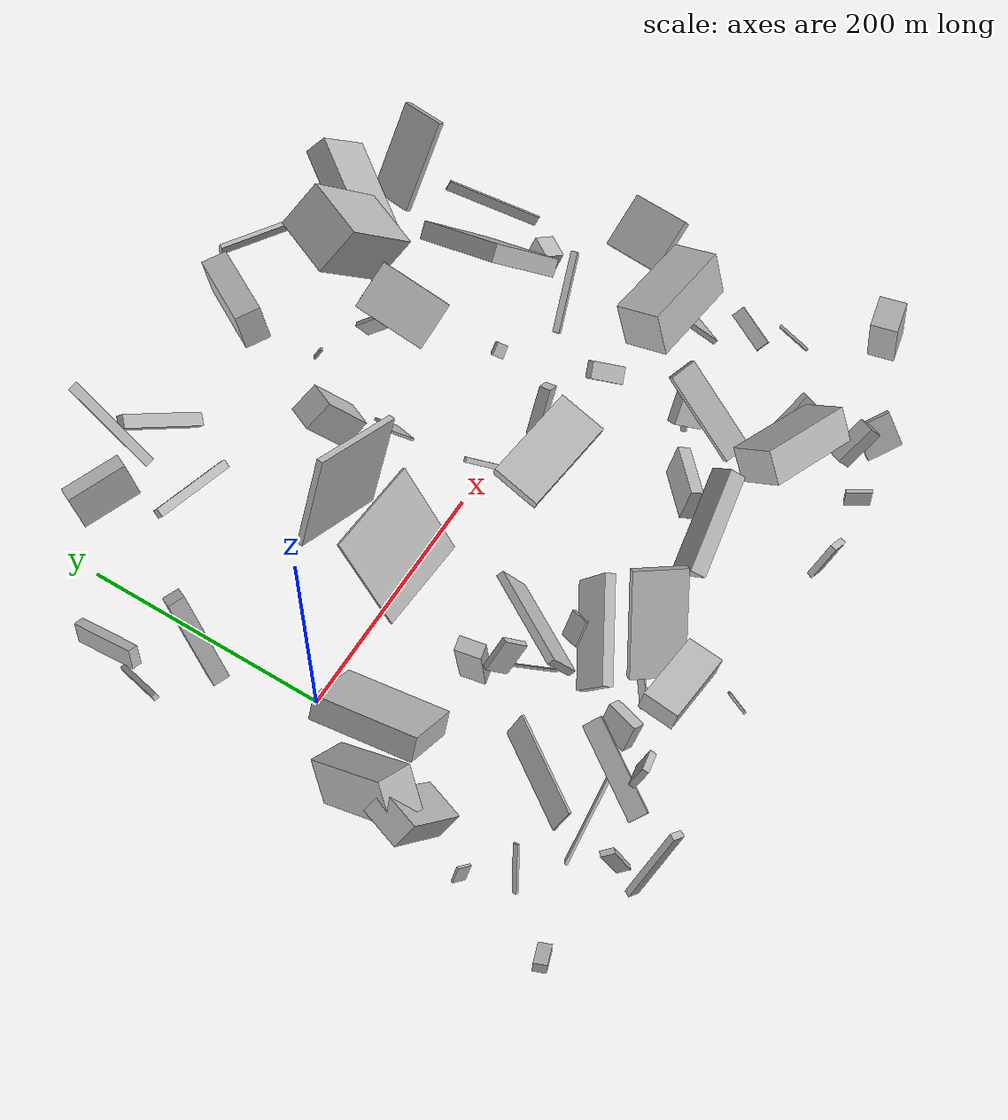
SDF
<sdf version="1.6">
 <world name="default">
  <scene>
   <sky><clouds><speed>12</speed></clouds></sky>
   <ambient>0.4 0.4 0.4 1</ambient>
   <background>0.7 0.7 0.7 1</background>
   <shadows>1</shadows>
  </scene>
  <gravity>0 0 -9.8066</gravity>
  <magnetic_field>6e-06 2.3e-05 -4.2e-05</magnetic_field>
  <physics default="0" name="default_physics" type="ode">
   <ode>
    <solver>
     <type>quick</type>
     <iters>10</iters>
     <sor>1.0</sor>
     <use_dynamic_moi_rescaling>0</use_dynamic_moi_rescaling>
    </solver>
    <constraints>
     <cfm>0</cfm>
     <erp>0.2</erp>
     <contact_max_correcting_vel>100</contact_max_correcting_vel>
     <contact_surface_layer>0.001</contact_surface_layer>
    </constraints>
   </ode>
   <max_step_size>0.004</max_step_size>
   <real_time_factor>1</real_time_factor>
   <real_time_update_rate>250</real_time_update_rate>
  </physics>
  <light name="sun" type="directional">
   <pose>0 0 10 0 0 0</pose>
   <diffuse>0.8 0.8 0.8 1</diffuse>
   <specular>0.2 0.2 0.2 1</specular>
   <attenuation>
    <range>1000</range>
    <constant>0.9</constant>
    <linear>0.01</linear>
    <quadratic>0.001</quadratic>
   </attenuation>
   <direction>-0.5 0.1 -0.9</direction>
  </light>
  <model name="building_1">
   <static>0</static>
   <pose>98.65952027042276 -174.1533421441343 38.85912450150474 1.1727703756111267 -0.3190201569502076 2.220692946929394</pose>
   <link name="link">
    <gravity>0</gravity>
    <pose>0 0 40.0 0 0 0</pose>
    <collision name="collision"><geometry><box><size>8 50 80</size></box></geometry></collision>
    <visual name="visual">
     <cast_shadows>0</cast_shadows>
     <geometry><box><size>8 50 80</size></box></geometry>
     <material>
      <script>
       <uri>model://HANNAS_wall/materials/scripts</uri>
       <uri>model://HANNAS_wall/materials/textures</uri>
       <name>vrc/HANNAS_wall</name>
      </script>
     </material>
    </visual>
   </link>
  </model>
  <model name="building_2">
   <static>0</static>
   <pose>325.8847567905955 -220.87213753472463 96.13601559932803 -2.2668115291003508 0.23320895431099123 -0.30538913012457736</pose>
   <link name="link">
    <gravity>0</gravity>
    <pose>0 0 18.5 0 0 0</pose>
    <collision name="collision"><geometry><box><size>80 27 37</size></box></geometry></collision>
    <visual name="visual">
     <cast_shadows>0</cast_shadows>
     <geometry><box><size>80 27 37</size></box></geometry>
     <material>
      <script>
       <uri>model://HANNAS_wall/materials/scripts</uri>
       <uri>model://HANNAS_wall/materials/textures</uri>
       <name>vrc/HANNAS_wall</name>
      </script>
     </material>
    </visual>
   </link>
  </model>
  <model name="building_3">
   <static>0</static>
   <pose>350.14220150622276 -130.73972283943507 38.6062443155322 2.8959494394034784 -0.6804544355356461 1.350264473938202</pose>
   <link name="link">
    <gravity>0</gravity>
    <pose>0 0 3.5 0 0 0</pose>
    <collision name="collision"><geometry><box><size>80 22 7</size></box></geometry></collision>
    <visual name="visual">
     <cast_shadows>0</cast_shadows>
     <geometry><box><size>80 22 7</size></box></geometry>
     <material>
      <script>
       <uri>model://HANNAS_wall/materials/scripts</uri>
       <uri>model://HANNAS_wall/materials/textures</uri>
       <name>vrc/HANNAS_wall</name>
      </script>
     </material>
    </visual>
   </link>
  </model>
  <model name="building_4">
   <static>0</static>
   <pose>134.85507351686107 -82.28586277931785 54.72055915039908 1.540994176997741 -0.4987905712875943 -0.541831244316115</pose>
   <link name="link">
    <gravity>0</gravity>
    <pose>0 0 40.0 0 0 0</pose>
    <collision name="collision"><geometry><box><size>6 37 80</size></box></geometry></collision>
    <visual name="visual">
     <cast_shadows>0</cast_shadows>
     <geometry><box><size>6 37 80</size></box></geometry>
     <material>
      <script>
       <uri>model://HANNAS_wall/materials/scripts</uri>
       <uri>model://HANNAS_wall/materials/textures</uri>
       <name>vrc/HANNAS_wall</name>
      </script>
     </material>
    </visual>
   </link>
  </model>
  <model name="building_5">
   <static>0</static>
   <pose>309.2110997720159 37.596763966591 35.133027826733354 -0.8369404338470863 -0.6169080573028273 -1.969258269937334</pose>
   <link name="link">
    <gravity>0</gravity>
    <pose>0 0 5.5 0 0 0</pose>
    <collision name="collision"><geometry><box><size>4 10 11</size></box></geometry></collision>
    <visual name="visual">
     <cast_shadows>0</cast_shadows>
     <geometry><box><size>4 10 11</size></box></geometry>
     <material>
      <script>
       <uri>model://HANNAS_wall/materials/scripts</uri>
       <uri>model://HANNAS_wall/materials/textures</uri>
       <name>vrc/HANNAS_wall</name>
      </script>
     </material>
    </visual>
   </link>
  </model>
  <model name="building_6">
   <static>0</static>
   <pose>74.36009528398291 226.38349896376485 89.12049457638929 -0.20209188882215015 -0.43786845589804707 1.4474424202597105</pose>
   <link name="link">
    <gravity>0</gravity>
    <pose>0 0 1.0 0 0 0</pose>
    <collision name="collision"><geometry><box><size>80 8 2</size></box></geometry></collision>
    <visual name="visual">
     <cast_shadows>0</cast_shadows>
     <geometry><box><size>80 8 2</size></box></geometry>
     <material>
      <script>
       <uri>model://HANNAS_wall/materials/scripts</uri>
       <uri>model://HANNAS_wall/materials/textures</uri>
       <name>vrc/HANNAS_wall</name>
      </script>
     </material>
    </visual>
   </link>
  </model>
  <model name="building_7">
   <static>0</static>
   <pose>-24.412986947388934 72.36122176631201 74.72013271514771 1.6864777115269198 -0.44924179745477605 -2.056482383095403</pose>
   <link name="link">
    <gravity>0</gravity>
    <pose>0 0 6.5 0 0 0</pose>
    <collision name="collision"><geometry><box><size>12 80 13</size></box></geometry></collision>
    <visual name="visual">
     <cast_shadows>0</cast_shadows>
     <geometry><box><size>12 80 13</size></box></geometry>
     <material>
      <script>
       <uri>model://HANNAS_wall/materials/scripts</uri>
       <uri>model://HANNAS_wall/materials/textures</uri>
       <name>vrc/HANNAS_wall</name>
      </script>
     </material>
    </visual>
   </link>
  </model>
  <model name="building_8">
   <static>0</static>
   <pose>81.06879108699674 166.9671685988209 39.577459563809875 -0.4443455773867298 0.5781249217525901 -1.8718781329524903</pose>
   <link name="link">
    <gravity>0</gravity>
    <pose>0 0 2.5 0 0 0</pose>
    <collision name="collision"><geometry><box><size>7 80 5</size></box></geometry></collision>
    <visual name="visual">
     <cast_shadows>0</cast_shadows>
     <geometry><box><size>7 80 5</size></box></geometry>
     <material>
      <script>
       <uri>model://HANNAS_wall/materials/scripts</uri>
       <uri>model://HANNAS_wall/materials/textures</uri>
       <name>vrc/HANNAS_wall</name>
      </script>
     </material>
    </visual>
   </link>
  </model>
  <model name="building_9">
   <static>0</static>
   <pose>359.1677625807357 -120.63459367286946 21.681177441906797 0.8642656626758382 -0.5163559185916671 -1.9414402821167032</pose>
   <link name="link">
    <gravity>0</gravity>
    <pose>0 0 13.5 0 0 0</pose>
    <collision name="collision"><geometry><box><size>10 29 27</size></box></geometry></collision>
    <visual name="visual">
     <cast_shadows>0</cast_shadows>
     <geometry><box><size>10 29 27</size></box></geometry>
     <material>
      <script>
       <uri>model://HANNAS_wall/materials/scripts</uri>
       <uri>model://HANNAS_wall/materials/textures</uri>
       <name>vrc/HANNAS_wall</name>
      </script>
     </material>
    </visual>
   </link>
  </model>
  <model name="building_10">
   <static>0</static>
   <pose>343.29654055596995 -40.792071231641415 19.453565919237153 0.9180426399432461 -0.4603536314774421 2.2421167046080783</pose>
   <link name="link">
    <gravity>0</gravity>
    <pose>0 0 7.0 0 0 0</pose>
    <collision name="collision"><geometry><box><size>29 9 14</size></box></geometry></collision>
    <visual name="visual">
     <cast_shadows>0</cast_shadows>
     <geometry><box><size>29 9 14</size></box></geometry>
     <material>
      <script>
       <uri>model://HANNAS_wall/materials/scripts</uri>
       <uri>model://HANNAS_wall/materials/textures</uri>
       <name>vrc/HANNAS_wall</name>
      </script>
     </material>
    </visual>
   </link>
  </model>
  <model name="building_11">
   <static>0</static>
   <pose>-82.79918165286048 -235.56644618803358 11.72771001895143 -1.5233000786856261 -0.528064696233164 -2.8032873297120577</pose>
   <link name="link">
    <gravity>0</gravity>
    <pose>0 0 5.0 0 0 0</pose>
    <collision name="collision"><geometry><box><size>22 7 10</size></box></geometry></collision>
    <visual name="visual">
     <cast_shadows>0</cast_shadows>
     <geometry><box><size>22 7 10</size></box></geometry>
     <material>
      <script>
       <uri>model://HANNAS_wall/materials/scripts</uri>
       <uri>model://HANNAS_wall/materials/textures</uri>
       <name>vrc/HANNAS_wall</name>
      </script>
     </material>
    </visual>
   </link>
  </model>
  <model name="building_12">
   <static>0</static>
   <pose>148.29755257983823 -193.55950447086116 81.04320600338662 0.8451313367753431 0.14103655940672405 -0.8703128404785504</pose>
   <link name="link">
    <gravity>0</gravity>
    <pose>0 0 3.5 0 0 0</pose>
    <collision name="collision"><geometry><box><size>41 80 7</size></box></geometry></collision>
    <visual name="visual">
     <cast_shadows>0</cast_shadows>
     <geometry><box><size>41 80 7</size></box></geometry>
     <material>
      <script>
       <uri>model://HANNAS_wall/materials/scripts</uri>
       <uri>model://HANNAS_wall/materials/textures</uri>
       <name>vrc/HANNAS_wall</name>
      </script>
     </material>
    </visual>
   </link>
  </model>
  <model name="building_13">
   <static>0</static>
   <pose>236.8161983154839 -34.33779244818538 76.79391231283302 -2.852840293093828 -1.3049194145693075 -1.97836421290302</pose>
   <link name="link">
    <gravity>0</gravity>
    <pose>0 0 20.0 0 0 0</pose>
    <collision name="collision"><geometry><box><size>10 80 40</size></box></geometry></collision>
    <visual name="visual">
     <cast_shadows>0</cast_shadows>
     <geometry><box><size>10 80 40</size></box></geometry>
     <material>
      <script>
       <uri>model://HANNAS_wall/materials/scripts</uri>
       <uri>model://HANNAS_wall/materials/textures</uri>
       <name>vrc/HANNAS_wall</name>
      </script>
     </material>
    </visual>
   </link>
  </model>
  <model name="building_14">
   <static>0</static>
   <pose>246.08946076549034 -176.0528268409289 62.358551121892575 -0.7126902134007401 0.34485778184605176 -3.0039016622317916</pose>
   <link name="link">
    <gravity>0</gravity>
    <pose>0 0 11.5 0 0 0</pose>
    <collision name="collision"><geometry><box><size>80 14 23</size></box></geometry></collision>
    <visual name="visual">
     <cast_shadows>0</cast_shadows>
     <geometry><box><size>80 14 23</size></box></geometry>
     <material>
      <script>
       <uri>model://HANNAS_wall/materials/scripts</uri>
       <uri>model://HANNAS_wall/materials/textures</uri>
       <name>vrc/HANNAS_wall</name>
      </script>
     </material>
    </visual>
   </link>
  </model>
  <model name="building_15">
   <static>0</static>
   <pose>349.4787392418909 -259.8339787869494 22.681481995762105 -1.1696277879516759 1.5330958092716742 -0.6355704817580131</pose>
   <link name="link">
    <gravity>0</gravity>
    <pose>0 0 1.5 0 0 0</pose>
    <collision name="collision"><geometry><box><size>18 20 3</size></box></geometry></collision>
    <visual name="visual">
     <cast_shadows>0</cast_shadows>
     <geometry><box><size>18 20 3</size></box></geometry>
     <material>
      <script>
       <uri>model://HANNAS_wall/materials/scripts</uri>
       <uri>model://HANNAS_wall/materials/textures</uri>
       <name>vrc/HANNAS_wall</name>
      </script>
     </material>
    </visual>
   </link>
  </model>
  <model name="building_16">
   <static>0</static>
   <pose>109.35894018821534 -0.7557419509506782 67.26832975907499 0.07357716554351296 -0.9724277368993676 1.4684831197790404</pose>
   <link name="link">
    <gravity>0</gravity>
    <pose>0 0 1.0 0 0 0</pose>
    <collision name="collision"><geometry><box><size>80 80 2</size></box></geometry></collision>
    <visual name="visual">
     <cast_shadows>0</cast_shadows>
     <geometry><box><size>80 80 2</size></box></geometry>
     <material>
      <script>
       <uri>model://HANNAS_wall/materials/scripts</uri>
       <uri>model://HANNAS_wall/materials/textures</uri>
       <name>vrc/HANNAS_wall</name>
      </script>
     </material>
    </visual>
   </link>
  </model>
  <model name="building_17">
   <static>0</static>
   <pose>258.41695444805595 -268.4703664714115 79.30296930591126 -1.757466640077178 -0.28302989326882266 2.9156996100035237</pose>
   <link name="link">
    <gravity>0</gravity>
    <pose>0 0 2.5 0 0 0</pose>
    <collision name="collision"><geometry><box><size>12 38 5</size></box></geometry></collision>
    <visual name="visual">
     <cast_shadows>0</cast_shadows>
     <geometry><box><size>12 38 5</size></box></geometry>
     <material>
      <script>
       <uri>model://HANNAS_wall/materials/scripts</uri>
       <uri>model://HANNAS_wall/materials/textures</uri>
       <name>vrc/HANNAS_wall</name>
      </script>
     </material>
    </visual>
   </link>
  </model>
  <model name="building_18">
   <static>0</static>
   <pose>354.40113714275407 -195.05920812190632 47.51754319487646 1.9450577532760014 -1.0206436499156997 2.3695379151580314</pose>
   <link name="link">
    <gravity>0</gravity>
    <pose>0 0 2.5 0 0 0</pose>
    <collision name="collision"><geometry><box><size>45 65 5</size></box></geometry></collision>
    <visual name="visual">
     <cast_shadows>0</cast_shadows>
     <geometry><box><size>45 65 5</size></box></geometry>
     <material>
      <script>
       <uri>model://HANNAS_wall/materials/scripts</uri>
       <uri>model://HANNAS_wall/materials/textures</uri>
       <name>vrc/HANNAS_wall</name>
      </script>
     </material>
    </visual>
   </link>
  </model>
  <model name="building_19">
   <static>0</static>
   <pose>210.50071997372783 -27.24775116755057 58.943045041557305 -2.724973645024649 -0.5622590371438199 0.27875951364175267</pose>
   <link name="link">
    <gravity>0</gravity>
    <pose>0 0 3.5 0 0 0</pose>
    <collision name="collision"><geometry><box><size>4 55 7</size></box></geometry></collision>
    <visual name="visual">
     <cast_shadows>0</cast_shadows>
     <geometry><box><size>4 55 7</size></box></geometry>
     <material>
      <script>
       <uri>model://HANNAS_wall/materials/scripts</uri>
       <uri>model://HANNAS_wall/materials/textures</uri>
       <name>vrc/HANNAS_wall</name>
      </script>
     </material>
    </visual>
   </link>
  </model>
  <model name="building_20">
   <static>0</static>
   <pose>310.29690893515885 267.0564898232415 28.72081051871964 0.1166144401391381 -0.12116334489524126 1.0773634704800064</pose>
   <link name="link">
    <gravity>0</gravity>
    <pose>0 0 4.5 0 0 0</pose>
    <collision name="collision"><geometry><box><size>4 70 9</size></box></geometry></collision>
    <visual name="visual">
     <cast_shadows>0</cast_shadows>
     <geometry><box><size>4 70 9</size></box></geometry>
     <material>
      <script>
       <uri>model://HANNAS_wall/materials/scripts</uri>
       <uri>model://HANNAS_wall/materials/textures</uri>
       <name>vrc/HANNAS_wall</name>
      </script>
     </material>
    </visual>
   </link>
  </model>
  <model name="building_21">
   <static>0</static>
   <pose>447.6981653685134 -152.11971575318393 36.71760114108779 2.8091438718497046 -0.1566799164938158 1.3536877916092658</pose>
   <link name="link">
    <gravity>0</gravity>
    <pose>0 0 2.0 0 0 0</pose>
    <collision name="collision"><geometry><box><size>29 2 4</size></box></geometry></collision>
    <visual name="visual">
     <cast_shadows>0</cast_shadows>
     <geometry><box><size>29 2 4</size></box></geometry>
     <material>
      <script>
       <uri>model://HANNAS_wall/materials/scripts</uri>
       <uri>model://HANNAS_wall/materials/textures</uri>
       <name>vrc/HANNAS_wall</name>
      </script>
     </material>
    </visual>
   </link>
  </model>
  <model name="building_22">
   <static>0</static>
   <pose>184.48427910376446 103.47035284001058 44.18386159374704 1.6955625963260916 0.5657004338472688 2.754952848539832</pose>
   <link name="link">
    <gravity>0</gravity>
    <pose>0 0 11.5 0 0 0</pose>
    <collision name="collision"><geometry><box><size>26 51 23</size></box></geometry></collision>
    <visual name="visual">
     <cast_shadows>0</cast_shadows>
     <geometry><box><size>26 51 23</size></box></geometry>
     <material>
      <script>
       <uri>model://HANNAS_wall/materials/scripts</uri>
       <uri>model://HANNAS_wall/materials/textures</uri>
       <name>vrc/HANNAS_wall</name>
      </script>
     </material>
    </visual>
   </link>
  </model>
  <model name="building_23">
   <static>0</static>
   <pose>276.7071859218826 -25.266134245656463 54.170424489798165 0.9435673610704698 -0.03958535060270197 -1.5042896650431157</pose>
   <link name="link">
    <gravity>0</gravity>
    <pose>0 0 6.5 0 0 0</pose>
    <collision name="collision"><geometry><box><size>9 40 13</size></box></geometry></collision>
    <visual name="visual">
     <cast_shadows>0</cast_shadows>
     <geometry><box><size>9 40 13</size></box></geometry>
     <material>
      <script>
       <uri>model://HANNAS_wall/materials/scripts</uri>
       <uri>model://HANNAS_wall/materials/textures</uri>
       <name>vrc/HANNAS_wall</name>
      </script>
     </material>
    </visual>
   </link>
  </model>
  <model name="building_24">
   <static>0</static>
   <pose>364.23038513560044 -233.46417159179936 37.62795937825359 0.04059152751013812 -0.9926172471328631 2.6866773385821627</pose>
   <link name="link">
    <gravity>0</gravity>
    <pose>0 0 17.0 0 0 0</pose>
    <collision name="collision"><geometry><box><size>22 12 34</size></box></geometry></collision>
    <visual name="visual">
     <cast_shadows>0</cast_shadows>
     <geometry><box><size>22 12 34</size></box></geometry>
     <material>
      <script>
       <uri>model://HANNAS_wall/materials/scripts</uri>
       <uri>model://HANNAS_wall/materials/textures</uri>
       <name>vrc/HANNAS_wall</name>
      </script>
     </material>
    </visual>
   </link>
  </model>
  <model name="building_25">
   <static>0</static>
   <pose>204.19228948086163 54.23597041199898 48.409569509824145 0.2941281291184839 0.6202336590518294 3.010554877673679</pose>
   <link name="link">
    <gravity>0</gravity>
    <pose>0 0 13.5 0 0 0</pose>
    <collision name="collision"><geometry><box><size>2 21 27</size></box></geometry></collision>
    <visual name="visual">
     <cast_shadows>0</cast_shadows>
     <geometry><box><size>2 21 27</size></box></geometry>
     <material>
      <script>
       <uri>model://HANNAS_wall/materials/scripts</uri>
       <uri>model://HANNAS_wall/materials/textures</uri>
       <name>vrc/HANNAS_wall</name>
      </script>
     </material>
    </visual>
   </link>
  </model>
  <model name="building_26">
   <static>0</static>
   <pose>8.341794733311751 -66.17088911934886 57.56238923194557 0.15572824573342922 0.8941243469347713 -2.929652579371057</pose>
   <link name="link">
    <gravity>0</gravity>
    <pose>0 0 26.0 0 0 0</pose>
    <collision name="collision"><geometry><box><size>19 80 52</size></box></geometry></collision>
    <visual name="visual">
     <cast_shadows>0</cast_shadows>
     <geometry><box><size>19 80 52</size></box></geometry>
     <material>
      <script>
       <uri>model://HANNAS_wall/materials/scripts</uri>
       <uri>model://HANNAS_wall/materials/textures</uri>
       <name>vrc/HANNAS_wall</name>
      </script>
     </material>
    </visual>
   </link>
  </model>
  <model name="building_27">
   <static>0</static>
   <pose>66.77540655226886 -208.48141337385096 70.39245767648906 3.053649682796068 -1.0890860835544625 -0.21785571360269768</pose>
   <link name="link">
    <gravity>0</gravity>
    <pose>0 0 5.0 0 0 0</pose>
    <collision name="collision"><geometry><box><size>23 25 10</size></box></geometry></collision>
    <visual name="visual">
     <cast_shadows>0</cast_shadows>
     <geometry><box><size>23 25 10</size></box></geometry>
     <material>
      <script>
       <uri>model://HANNAS_wall/materials/scripts</uri>
       <uri>model://HANNAS_wall/materials/textures</uri>
       <name>vrc/HANNAS_wall</name>
      </script>
     </material>
    </visual>
   </link>
  </model>
  <model name="building_28">
   <static>0</static>
   <pose>417.03405305334144 -231.04518851963314 123.25328922969481 -0.18819953407117962 0.05548872168324742 1.7568186903642184</pose>
   <link name="link">
    <gravity>0</gravity>
    <pose>0 0 23.5 0 0 0</pose>
    <collision name="collision"><geometry><box><size>20 24 47</size></box></geometry></collision>
    <visual name="visual">
     <cast_shadows>0</cast_shadows>
     <geometry><box><size>20 24 47</size></box></geometry>
     <material>
      <script>
       <uri>model://HANNAS_wall/materials/scripts</uri>
       <uri>model://HANNAS_wall/materials/textures</uri>
       <name>vrc/HANNAS_wall</name>
      </script>
     </material>
    </visual>
   </link>
  </model>
  <model name="building_29">
   <static>0</static>
   <pose>425.45918554633295 57.22283635352248 12.663532408177081 1.4963996127644998 1.1864886245338293 2.4802889553906597</pose>
   <link name="link">
    <gravity>0</gravity>
    <pose>0 0 10.5 0 0 0</pose>
    <collision name="collision"><geometry><box><size>19 17 21</size></box></geometry></collision>
    <visual name="visual">
     <cast_shadows>0</cast_shadows>
     <geometry><box><size>19 17 21</size></box></geometry>
     <material>
      <script>
       <uri>model://HANNAS_wall/materials/scripts</uri>
       <uri>model://HANNAS_wall/materials/textures</uri>
       <name>vrc/HANNAS_wall</name>
      </script>
     </material>
    </visual>
   </link>
  </model>
  <model name="building_30">
   <static>0</static>
   <pose>73.40907232074888 -116.46956141084621 69.03401802321947 -1.9555697604136693 -0.8276296557770727 -0.3114551550793844</pose>
   <link name="link">
    <gravity>0</gravity>
    <pose>0 0 2.5 0 0 0</pose>
    <collision name="collision"><geometry><box><size>27 20 5</size></box></geometry></collision>
    <visual name="visual">
     <cast_shadows>0</cast_shadows>
     <geometry><box><size>27 20 5</size></box></geometry>
     <material>
      <script>
       <uri>model://HANNAS_wall/materials/scripts</uri>
       <uri>model://HANNAS_wall/materials/textures</uri>
       <name>vrc/HANNAS_wall</name>
      </script>
     </material>
    </visual>
   </link>
  </model>
  <model name="building_31">
   <static>0</static>
   <pose>66.85861627951577 -81.387626972033 47.09222278949576 -1.7576797071661494 -1.3286850468875484 -2.7583569301344593</pose>
   <link name="link">
    <gravity>0</gravity>
    <pose>0 0 10.0 0 0 0</pose>
    <collision name="collision"><geometry><box><size>80 11 20</size></box></geometry></collision>
    <visual name="visual">
     <cast_shadows>0</cast_shadows>
     <geometry><box><size>80 11 20</size></box></geometry>
     <material>
      <script>
       <uri>model://HANNAS_wall/materials/scripts</uri>
       <uri>model://HANNAS_wall/materials/textures</uri>
       <name>vrc/HANNAS_wall</name>
      </script>
     </material>
    </visual>
   </link>
  </model>
  <model name="building_32">
   <static>0</static>
   <pose>17.66474902017066 -217.61426583251375 27.99727659522761 0.2205224980212568 -0.4630881171476055 0.0265149451502023</pose>
   <link name="link">
    <gravity>0</gravity>
    <pose>0 0 10.5 0 0 0</pose>
    <collision name="collision"><geometry><box><size>70 2 21</size></box></geometry></collision>
    <visual name="visual">
     <cast_shadows>0</cast_shadows>
     <geometry><box><size>70 2 21</size></box></geometry>
     <material>
      <script>
       <uri>model://HANNAS_wall/materials/scripts</uri>
       <uri>model://HANNAS_wall/materials/textures</uri>
       <name>vrc/HANNAS_wall</name>
      </script>
     </material>
    </visual>
   </link>
  </model>
  <model name="building_33">
   <static>0</static>
   <pose>220.6586491051038 233.16005629962052 65.01407254226031 1.205991620099312 -1.297713576954104 1.372753819161372</pose>
   <link name="link">
    <gravity>0</gravity>
    <pose>0 0 10.5 0 0 0</pose>
    <collision name="collision"><geometry><box><size>31 80 21</size></box></geometry></collision>
    <visual name="visual">
     <cast_shadows>0</cast_shadows>
     <geometry><box><size>31 80 21</size></box></geometry>
     <material>
      <script>
       <uri>model://HANNAS_wall/materials/scripts</uri>
       <uri>model://HANNAS_wall/materials/textures</uri>
       <name>vrc/HANNAS_wall</name>
      </script>
     </material>
    </visual>
   </link>
  </model>
  <model name="building_34">
   <static>0</static>
   <pose>326.38751806711514 108.35653859520716 35.0262248719273 -3.054892699395326 0.8529918076408743 -1.1220889162391599</pose>
   <link name="link">
    <gravity>0</gravity>
    <pose>0 0 40.0 0 0 0</pose>
    <collision name="collision"><geometry><box><size>15 4 80</size></box></geometry></collision>
    <visual name="visual">
     <cast_shadows>0</cast_shadows>
     <geometry><box><size>15 4 80</size></box></geometry>
     <material>
      <script>
       <uri>model://HANNAS_wall/materials/scripts</uri>
       <uri>model://HANNAS_wall/materials/textures</uri>
       <name>vrc/HANNAS_wall</name>
      </script>
     </material>
    </visual>
   </link>
  </model>
  <model name="building_35">
   <static>0</static>
   <pose>100.8183756391794 -234.87670313239389 99.60730351927279 -0.08737957697304319 -0.27488746635662653 3.099159517218525</pose>
   <link name="link">
    <gravity>0</gravity>
    <pose>0 0 7.5 0 0 0</pose>
    <collision name="collision"><geometry><box><size>63 27 15</size></box></geometry></collision>
    <visual name="visual">
     <cast_shadows>0</cast_shadows>
     <geometry><box><size>63 27 15</size></box></geometry>
     <material>
      <script>
       <uri>model://HANNAS_wall/materials/scripts</uri>
       <uri>model://HANNAS_wall/materials/textures</uri>
       <name>vrc/HANNAS_wall</name>
      </script>
     </material>
    </visual>
   </link>
  </model>
  <model name="building_36">
   <static>0</static>
   <pose>410.7030989024437 -85.59500132638665 52.41006078714102 0.09191777257293128 0.5990993057583724 2.688385713884642</pose>
   <link name="link">
    <gravity>0</gravity>
    <pose>0 0 21.5 0 0 0</pose>
    <collision name="collision"><geometry><box><size>4 49 43</size></box></geometry></collision>
    <visual name="visual">
     <cast_shadows>0</cast_shadows>
     <geometry><box><size>4 49 43</size></box></geometry>
     <material>
      <script>
       <uri>model://HANNAS_wall/materials/scripts</uri>
       <uri>model://HANNAS_wall/materials/textures</uri>
       <name>vrc/HANNAS_wall</name>
      </script>
     </material>
    </visual>
   </link>
  </model>
  <model name="building_37">
   <static>0</static>
   <pose>1.3273240693567883 -275.1840112472405 55.9805968403048 1.680058227506492 -1.2172722498232547 -0.620868116290746</pose>
   <link name="link">
    <gravity>0</gravity>
    <pose>0 0 2.5 0 0 0</pose>
    <collision name="collision"><geometry><box><size>80 9 5</size></box></geometry></collision>
    <visual name="visual">
     <cast_shadows>0</cast_shadows>
     <geometry><box><size>80 9 5</size></box></geometry>
     <material>
      <script>
       <uri>model://HANNAS_wall/materials/scripts</uri>
       <uri>model://HANNAS_wall/materials/textures</uri>
       <name>vrc/HANNAS_wall</name>
      </script>
     </material>
    </visual>
   </link>
  </model>
  <model name="building_38">
   <static>0</static>
   <pose>290.2719716341067 177.63197619769346 93.37981847987906 0.8297097763080108 -0.11493539979377157 1.1806344980060886</pose>
   <link name="link">
    <gravity>0</gravity>
    <pose>0 0 21.0 0 0 0</pose>
    <collision name="collision"><geometry><box><size>52 80 42</size></box></geometry></collision>
    <visual name="visual">
     <cast_shadows>0</cast_shadows>
     <geometry><box><size>52 80 42</size></box></geometry>
     <material>
      <script>
       <uri>model://HANNAS_wall/materials/scripts</uri>
       <uri>model://HANNAS_wall/materials/textures</uri>
       <name>vrc/HANNAS_wall</name>
      </script>
     </material>
    </visual>
   </link>
  </model>
  <model name="building_39">
   <static>0</static>
   <pose>429.4888781555837 117.80394644013072 42.059209938521775 -0.4315295401792449 -0.26474726054271486 -2.6156622207733666</pose>
   <link name="link">
    <gravity>0</gravity>
    <pose>0 0 4.5 0 0 0</pose>
    <collision name="collision"><geometry><box><size>2 80 9</size></box></geometry></collision>
    <visual name="visual">
     <cast_shadows>0</cast_shadows>
     <geometry><box><size>2 80 9</size></box></geometry>
     <material>
      <script>
       <uri>model://HANNAS_wall/materials/scripts</uri>
       <uri>model://HANNAS_wall/materials/textures</uri>
       <name>vrc/HANNAS_wall</name>
      </script>
     </material>
    </visual>
   </link>
  </model>
  <model name="building_40">
   <static>0</static>
   <pose>-47.29853666461455 -197.9150296638421 87.92379591944906 2.641217972568441 0.46885481261374545 -0.3511055775156434</pose>
   <link name="link">
    <gravity>0</gravity>
    <pose>0 0 18.5 0 0 0</pose>
    <collision name="collision"><geometry><box><size>2 4 37</size></box></geometry></collision>
    <visual name="visual">
     <cast_shadows>0</cast_shadows>
     <geometry><box><size>2 4 37</size></box></geometry>
     <material>
      <script>
       <uri>model://HANNAS_wall/materials/scripts</uri>
       <uri>model://HANNAS_wall/materials/textures</uri>
       <name>vrc/HANNAS_wall</name>
      </script>
     </material>
    </visual>
   </link>
  </model>
  <model name="building_41">
   <static>0</static>
   <pose>335.88732619920705 -5.649987102333785 119.54786527165385 2.5812295577475166 0.042173239651579826 1.832828511713632</pose>
   <link name="link">
    <gravity>0</gravity>
    <pose>0 0 4.5 0 0 0</pose>
    <collision name="collision"><geometry><box><size>5 62 9</size></box></geometry></collision>
    <visual name="visual">
     <cast_shadows>0</cast_shadows>
     <geometry><box><size>5 62 9</size></box></geometry>
     <material>
      <script>
       <uri>model://HANNAS_wall/materials/scripts</uri>
       <uri>model://HANNAS_wall/materials/textures</uri>
       <name>vrc/HANNAS_wall</name>
      </script>
     </material>
    </visual>
   </link>
  </model>
  <model name="building_42">
   <static>0</static>
   <pose>-65.22204468588987 107.47465821512344 33.13491585277126 2.4150770744701413 -0.11995677243468175 -0.30080006753769967</pose>
   <link name="link">
    <gravity>0</gravity>
    <pose>0 0 2.0 0 0 0</pose>
    <collision name="collision"><geometry><box><size>4 80 4</size></box></geometry></collision>
    <visual name="visual">
     <cast_shadows>0</cast_shadows>
     <geometry><box><size>4 80 4</size></box></geometry>
     <material>
      <script>
       <uri>model://HANNAS_wall/materials/scripts</uri>
       <uri>model://HANNAS_wall/materials/textures</uri>
       <name>vrc/HANNAS_wall</name>
      </script>
     </material>
    </visual>
   </link>
  </model>
  <model name="building_43">
   <static>0</static>
   <pose>378.82572835857627 209.3278814883632 66.02558579712587 -2.748895622315756 0.730498464628348 -0.3293436081400719</pose>
   <link name="link">
    <gravity>0</gravity>
    <pose>0 0 10.5 0 0 0</pose>
    <collision name="collision"><geometry><box><size>49 80 21</size></box></geometry></collision>
    <visual name="visual">
     <cast_shadows>0</cast_shadows>
     <geometry><box><size>49 80 21</size></box></geometry>
     <material>
      <script>
       <uri>model://HANNAS_wall/materials/scripts</uri>
       <uri>model://HANNAS_wall/materials/textures</uri>
       <name>vrc/HANNAS_wall</name>
      </script>
     </material>
    </visual>
   </link>
  </model>
  <model name="building_44">
   <static>0</static>
   <pose>381.1494006425148 -89.29287331276112 111.96469516695183 1.9320527795689733 -0.09287710009757487 3.061365784634965</pose>
   <link name="link">
    <gravity>0</gravity>
    <pose>0 0 18.5 0 0 0</pose>
    <collision name="collision"><geometry><box><size>80 36 37</size></box></geometry></collision>
    <visual name="visual">
     <cast_shadows>0</cast_shadows>
     <geometry><box><size>80 36 37</size></box></geometry>
     <material>
      <script>
       <uri>model://HANNAS_wall/materials/scripts</uri>
       <uri>model://HANNAS_wall/materials/textures</uri>
       <name>vrc/HANNAS_wall</name>
      </script>
     </material>
    </visual>
   </link>
  </model>
  <model name="building_45">
   <static>0</static>
   <pose>129.00129520181272 -195.92976941408256 34.38347207293586 0.793874971986604 -0.1741683194041572 -1.041110448943355</pose>
   <link name="link">
    <gravity>0</gravity>
    <pose>0 0 5.5 0 0 0</pose>
    <collision name="collision"><geometry><box><size>5 46 11</size></box></geometry></collision>
    <visual name="visual">
     <cast_shadows>0</cast_shadows>
     <geometry><box><size>5 46 11</size></box></geometry>
     <material>
      <script>
       <uri>model://HANNAS_wall/materials/scripts</uri>
       <uri>model://HANNAS_wall/materials/textures</uri>
       <name>vrc/HANNAS_wall</name>
      </script>
     </material>
    </visual>
   </link>
  </model>
  <model name="building_46">
   <static>0</static>
   <pose>361.0783161347816 -106.67011870098729 21.120054040300147 2.582279996605663 -0.4642579721999665 -1.8220962962894427</pose>
   <link name="link">
    <gravity>0</gravity>
    <pose>0 0 12.5 0 0 0</pose>
    <collision name="collision"><geometry><box><size>5 2 25</size></box></geometry></collision>
    <visual name="visual">
     <cast_shadows>0</cast_shadows>
     <geometry><box><size>5 2 25</size></box></geometry>
     <material>
      <script>
       <uri>model://HANNAS_wall/materials/scripts</uri>
       <uri>model://HANNAS_wall/materials/textures</uri>
       <name>vrc/HANNAS_wall</name>
      </script>
     </material>
    </visual>
   </link>
  </model>
  <model name="building_47">
   <static>0</static>
   <pose>-58.428732645957155 137.2386907032593 34.84466381641474 0.37555375373484606 -0.2700440634970905 2.9613434534469105</pose>
   <link name="link">
    <gravity>0</gravity>
    <pose>0 0 8.0 0 0 0</pose>
    <collision name="collision"><geometry><box><size>8 60 16</size></box></geometry></collision>
    <visual name="visual">
     <cast_shadows>0</cast_shadows>
     <geometry><box><size>8 60 16</size></box></geometry>
     <material>
      <script>
       <uri>model://HANNAS_wall/materials/scripts</uri>
       <uri>model://HANNAS_wall/materials/textures</uri>
       <name>vrc/HANNAS_wall</name>
      </script>
     </material>
    </visual>
   </link>
  </model>
  <model name="building_48">
   <static>0</static>
   <pose>186.53641178325555 70.9969680444526 33.35454708529911 -1.0543218698545882 -0.36343048159192276 0.263481327664569</pose>
   <link name="link">
    <gravity>0</gravity>
    <pose>0 0 2.0 0 0 0</pose>
    <collision name="collision"><geometry><box><size>7 2 4</size></box></geometry></collision>
    <visual name="visual">
     <cast_shadows>0</cast_shadows>
     <geometry><box><size>7 2 4</size></box></geometry>
     <material>
      <script>
       <uri>model://HANNAS_wall/materials/scripts</uri>
       <uri>model://HANNAS_wall/materials/textures</uri>
       <name>vrc/HANNAS_wall</name>
      </script>
     </material>
    </visual>
   </link>
  </model>
  <model name="building_49">
   <static>0</static>
   <pose>472.1292103606661 17.12528777608889 45.91250329911581 -1.2290382060027796 -0.9974634135348005 2.6319127800835056</pose>
   <link name="link">
    <gravity>0</gravity>
    <pose>0 0 26.0 0 0 0</pose>
    <collision name="collision"><geometry><box><size>7 46 52</size></box></geometry></collision>
    <visual name="visual">
     <cast_shadows>0</cast_shadows>
     <geometry><box><size>7 46 52</size></box></geometry>
     <material>
      <script>
       <uri>model://HANNAS_wall/materials/scripts</uri>
       <uri>model://HANNAS_wall/materials/textures</uri>
       <name>vrc/HANNAS_wall</name>
      </script>
     </material>
    </visual>
   </link>
  </model>
  <model name="building_50">
   <static>0</static>
   <pose>125.88351080165253 229.54076433481194 35.312776810275565 -2.1638036816167547 -0.6744994662690519 2.7319162401325014</pose>
   <link name="link">
    <gravity>0</gravity>
    <pose>0 0 5.5 0 0 0</pose>
    <collision name="collision"><geometry><box><size>80 7 11</size></box></geometry></collision>
    <visual name="visual">
     <cast_shadows>0</cast_shadows>
     <geometry><box><size>80 7 11</size></box></geometry>
     <material>
      <script>
       <uri>model://HANNAS_wall/materials/scripts</uri>
       <uri>model://HANNAS_wall/materials/textures</uri>
       <name>vrc/HANNAS_wall</name>
      </script>
     </material>
    </visual>
   </link>
  </model>
  <model name="building_51">
   <static>0</static>
   <pose>435.157114411415 199.64223659543399 48.50744384673663 0.14106805250960772 0.9230089852592116 3.0721354313776965</pose>
   <link name="link">
    <gravity>0</gravity>
    <pose>0 0 3.0 0 0 0</pose>
    <collision name="collision"><geometry><box><size>80 38 6</size></box></geometry></collision>
    <visual name="visual">
     <cast_shadows>0</cast_shadows>
     <geometry><box><size>80 38 6</size></box></geometry>
     <material>
      <script>
       <uri>model://HANNAS_wall/materials/scripts</uri>
       <uri>model://HANNAS_wall/materials/textures</uri>
       <name>vrc/HANNAS_wall</name>
      </script>
     </material>
    </visual>
   </link>
  </model>
  <model name="building_52">
   <static>0</static>
   <pose>276.5296704746835 116.85516912597268 54.30245822606098 -0.6093435861507239 -0.8301701296270111 -2.5501930659137373</pose>
   <link name="link">
    <gravity>0</gravity>
    <pose>0 0 20.5 0 0 0</pose>
    <collision name="collision"><geometry><box><size>2 61 41</size></box></geometry></collision>
    <visual name="visual">
     <cast_shadows>0</cast_shadows>
     <geometry><box><size>2 61 41</size></box></geometry>
     <material>
      <script>
       <uri>model://HANNAS_wall/materials/scripts</uri>
       <uri>model://HANNAS_wall/materials/textures</uri>
       <name>vrc/HANNAS_wall</name>
      </script>
     </material>
    </visual>
   </link>
  </model>
  <model name="building_53">
   <static>0</static>
   <pose>-48.307217592242566 -124.8621425553207 65.47432306919539 2.9309867971847545 -0.9741692628411383 3.013684325604175</pose>
   <link name="link">
    <gravity>0</gravity>
    <pose>0 0 10.0 0 0 0</pose>
    <collision name="collision"><geometry><box><size>80 32 20</size></box></geometry></collision>
    <visual name="visual">
     <cast_shadows>0</cast_shadows>
     <geometry><box><size>80 32 20</size></box></geometry>
     <material>
      <script>
       <uri>model://HANNAS_wall/materials/scripts</uri>
       <uri>model://HANNAS_wall/materials/textures</uri>
       <name>vrc/HANNAS_wall</name>
      </script>
     </material>
    </visual>
   </link>
  </model>
  <model name="building_54">
   <static>0</static>
   <pose>41.24022459938618 -222.39470711054815 66.9020219257446 2.6567294163975217 -0.21489264543546502 0.9980208854804049</pose>
   <link name="link">
    <gravity>0</gravity>
    <pose>0 0 1.5 0 0 0</pose>
    <collision name="collision"><geometry><box><size>73 15 3</size></box></geometry></collision>
    <visual name="visual">
     <cast_shadows>0</cast_shadows>
     <geometry><box><size>73 15 3</size></box></geometry>
     <material>
      <script>
       <uri>model://HANNAS_wall/materials/scripts</uri>
       <uri>model://HANNAS_wall/materials/textures</uri>
       <name>vrc/HANNAS_wall</name>
      </script>
     </material>
    </visual>
   </link>
  </model>
  <model name="building_55">
   <static>0</static>
   <pose>238.05705772015813 159.24481992669445 34.736258230579956 2.168321832601111 0.13993223491032813 0.6825376214828355</pose>
   <link name="link">
    <gravity>0</gravity>
    <pose>0 0 1.0 0 0 0</pose>
    <collision name="collision"><geometry><box><size>3 11 2</size></box></geometry></collision>
    <visual name="visual">
     <cast_shadows>0</cast_shadows>
     <geometry><box><size>3 11 2</size></box></geometry>
     <material>
      <script>
       <uri>model://HANNAS_wall/materials/scripts</uri>
       <uri>model://HANNAS_wall/materials/textures</uri>
       <name>vrc/HANNAS_wall</name>
      </script>
     </material>
    </visual>
   </link>
  </model>
  <model name="building_56">
   <static>0</static>
   <pose>437.5435389250536 -115.06848788929199 27.500891282520474 -1.0071151920791157 0.23782413152449455 -2.0094728194891163</pose>
   <link name="link">
    <gravity>0</gravity>
    <pose>0 0 5.5 0 0 0</pose>
    <collision name="collision"><geometry><box><size>35 3 11</size></box></geometry></collision>
    <visual name="visual">
     <cast_shadows>0</cast_shadows>
     <geometry><box><size>35 3 11</size></box></geometry>
     <material>
      <script>
       <uri>model://HANNAS_wall/materials/scripts</uri>
       <uri>model://HANNAS_wall/materials/textures</uri>
       <name>vrc/HANNAS_wall</name>
      </script>
     </material>
    </visual>
   </link>
  </model>
  <model name="building_57">
   <static>0</static>
   <pose>155.55268317143538 42.04981073078538 88.05441759329216 -0.02878078479193907 -1.1860987266363068 -0.11039845907393755</pose>
   <link name="link">
    <gravity>0</gravity>
    <pose>0 0 40.0 0 0 0</pose>
    <collision name="collision"><geometry><box><size>80 5 80</size></box></geometry></collision>
    <visual name="visual">
     <cast_shadows>0</cast_shadows>
     <geometry><box><size>80 5 80</size></box></geometry>
     <material>
      <script>
       <uri>model://HANNAS_wall/materials/scripts</uri>
       <uri>model://HANNAS_wall/materials/textures</uri>
       <name>vrc/HANNAS_wall</name>
      </script>
     </material>
    </visual>
   </link>
  </model>
  <model name="building_58">
   <static>0</static>
   <pose>43.46515316764733 -244.00780543905466 84.68597905493439 0.9047449742666392 1.0027489109270504 2.591702331504037</pose>
   <link name="link">
    <gravity>0</gravity>
    <pose>0 0 2.5 0 0 0</pose>
    <collision name="collision"><geometry><box><size>18 21 5</size></box></geometry></collision>
    <visual name="visual">
     <cast_shadows>0</cast_shadows>
     <geometry><box><size>18 21 5</size></box></geometry>
     <material>
      <script>
       <uri>model://HANNAS_wall/materials/scripts</uri>
       <uri>model://HANNAS_wall/materials/textures</uri>
       <name>vrc/HANNAS_wall</name>
      </script>
     </material>
    </visual>
   </link>
  </model>
  <model name="building_59">
   <static>0</static>
   <pose>28.566722989687232 -176.36144183094433 45.929371648208715 3.1284357562754126 -0.5128189504717741 2.5399554402724873</pose>
   <link name="link">
    <gravity>0</gravity>
    <pose>0 0 11.5 0 0 0</pose>
    <collision name="collision"><geometry><box><size>2 80 23</size></box></geometry></collision>
    <visual name="visual">
     <cast_shadows>0</cast_shadows>
     <geometry><box><size>2 80 23</size></box></geometry>
     <material>
      <script>
       <uri>model://HANNAS_wall/materials/scripts</uri>
       <uri>model://HANNAS_wall/materials/textures</uri>
       <name>vrc/HANNAS_wall</name>
      </script>
     </material>
    </visual>
   </link>
  </model>
  <model name="building_60">
   <static>0</static>
   <pose>28.15754067318962 197.6008622049283 65.6297879480716 -0.1782861588671423 -0.13645679799760133 -0.43570587135153577</pose>
   <link name="link">
    <gravity>0</gravity>
    <pose>0 0 17.0 0 0 0</pose>
    <collision name="collision"><geometry><box><size>47 13 34</size></box></geometry></collision>
    <visual name="visual">
     <cast_shadows>0</cast_shadows>
     <geometry><box><size>47 13 34</size></box></geometry>
     <material>
      <script>
       <uri>model://HANNAS_wall/materials/scripts</uri>
       <uri>model://HANNAS_wall/materials/textures</uri>
       <name>vrc/HANNAS_wall</name>
      </script>
     </material>
    </visual>
   </link>
  </model>
  <model name="building_61">
   <static>0</static>
   <pose>275.5194974321007 -156.3014811494301 26.136648878906612 1.765660602503255 -0.2893288555567682 2.2237381598118664</pose>
   <link name="link">
    <gravity>0</gravity>
    <pose>0 0 24.0 0 0 0</pose>
    <collision name="collision"><geometry><box><size>10 28 48</size></box></geometry></collision>
    <visual name="visual">
     <cast_shadows>0</cast_shadows>
     <geometry><box><size>10 28 48</size></box></geometry>
     <material>
      <script>
       <uri>model://HANNAS_wall/materials/scripts</uri>
       <uri>model://HANNAS_wall/materials/textures</uri>
       <name>vrc/HANNAS_wall</name>
      </script>
     </material>
    </visual>
   </link>
  </model>
  <model name="building_62">
   <static>0</static>
   <pose>-64.05878372274921 -162.45430657343383 9.76012607554888 0.24339602314251807 -0.46846766472747786 2.5637858302531673</pose>
   <link name="link">
    <gravity>0</gravity>
    <pose>0 0 7.0 0 0 0</pose>
    <collision name="collision"><geometry><box><size>11 2 14</size></box></geometry></collision>
    <visual name="visual">
     <cast_shadows>0</cast_shadows>
     <geometry><box><size>11 2 14</size></box></geometry>
     <material>
      <script>
       <uri>model://HANNAS_wall/materials/scripts</uri>
       <uri>model://HANNAS_wall/materials/textures</uri>
       <name>vrc/HANNAS_wall</name>
      </script>
     </material>
    </visual>
   </link>
  </model>
  <model name="building_63">
   <static>0</static>
   <pose>-54.76522169135407 -54.66574097807948 45.0163684935273 0.40944116988746593 -0.8258516624224597 0.9297458938111334</pose>
   <link name="link">
    <gravity>0</gravity>
    <pose>0 0 40.0 0 0 0</pose>
    <collision name="collision"><geometry><box><size>34 27 80</size></box></geometry></collision>
    <visual name="visual">
     <cast_shadows>0</cast_shadows>
     <geometry><box><size>34 27 80</size></box></geometry>
     <material>
      <script>
       <uri>model://HANNAS_wall/materials/scripts</uri>
       <uri>model://HANNAS_wall/materials/textures</uri>
       <name>vrc/HANNAS_wall</name>
      </script>
     </material>
    </visual>
   </link>
  </model>
  <model name="building_64">
   <static>0</static>
   <pose>378.54744125008705 89.95415045390263 49.07155604455853 0.8375644881203221 0.38641366315685727 1.438376617882838</pose>
   <link name="link">
    <gravity>0</gravity>
    <pose>0 0 7.5 0 0 0</pose>
    <collision name="collision"><geometry><box><size>80 77 15</size></box></geometry></collision>
    <visual name="visual">
     <cast_shadows>0</cast_shadows>
     <geometry><box><size>80 77 15</size></box></geometry>
     <material>
      <script>
       <uri>model://HANNAS_wall/materials/scripts</uri>
       <uri>model://HANNAS_wall/materials/textures</uri>
       <name>vrc/HANNAS_wall</name>
      </script>
     </material>
    </visual>
   </link>
  </model>
  <model name="building_65">
   <static>0</static>
   <pose>90.20265838889745 -107.82815151636544 22.499652540245073 -0.7791490103507578 0.7516277303437296 -2.435960507175946</pose>
   <link name="link">
    <gravity>0</gravity>
    <pose>0 0 22.5 0 0 0</pose>
    <collision name="collision"><geometry><box><size>2 2 45</size></box></geometry></collision>
    <visual name="visual">
     <cast_shadows>0</cast_shadows>
     <geometry><box><size>2 2 45</size></box></geometry>
     <material>
      <script>
       <uri>model://HANNAS_wall/materials/scripts</uri>
       <uri>model://HANNAS_wall/materials/textures</uri>
       <name>vrc/HANNAS_wall</name>
      </script>
     </material>
    </visual>
   </link>
  </model>
  <model name="building_66">
   <static>0</static>
   <pose>407.31606861848815 -248.50428446249506 24.305183452858397 2.155690628540128 0.2827065996494993 2.5003576471507665</pose>
   <link name="link">
    <gravity>0</gravity>
    <pose>0 0 2.0 0 0 0</pose>
    <collision name="collision"><geometry><box><size>29 31 4</size></box></geometry></collision>
    <visual name="visual">
     <cast_shadows>0</cast_shadows>
     <geometry><box><size>29 31 4</size></box></geometry>
     <material>
      <script>
       <uri>model://HANNAS_wall/materials/scripts</uri>
       <uri>model://HANNAS_wall/materials/textures</uri>
       <name>vrc/HANNAS_wall</name>
      </script>
     </material>
    </visual>
   </link>
  </model>
  <model name="building_67">
   <static>0</static>
   <pose>98.10808605489001 -152.0694909968579 91.32986940428444 0.6070183163887225 0.22068786642242885 1.2130643347007115</pose>
   <link name="link">
    <gravity>0</gravity>
    <pose>0 0 10.5 0 0 0</pose>
    <collision name="collision"><geometry><box><size>15 2 21</size></box></geometry></collision>
    <visual name="visual">
     <cast_shadows>0</cast_shadows>
     <geometry><box><size>15 2 21</size></box></geometry>
     <material>
      <script>
       <uri>model://HANNAS_wall/materials/scripts</uri>
       <uri>model://HANNAS_wall/materials/textures</uri>
       <name>vrc/HANNAS_wall</name>
      </script>
     </material>
    </visual>
   </link>
  </model>
  <model name="building_68">
   <static>0</static>
   <pose>146.4363891708415 -263.7303922370588 31.60241727600097 0.8669156015147945 -0.4202160803089424 -0.522123352813821</pose>
   <link name="link">
    <gravity>0</gravity>
    <pose>0 0 1.5 0 0 0</pose>
    <collision name="collision"><geometry><box><size>2 21 3</size></box></geometry></collision>
    <visual name="visual">
     <cast_shadows>0</cast_shadows>
     <geometry><box><size>2 21 3</size></box></geometry>
     <material>
      <script>
       <uri>model://HANNAS_wall/materials/scripts</uri>
       <uri>model://HANNAS_wall/materials/textures</uri>
       <name>vrc/HANNAS_wall</name>
      </script>
     </material>
    </visual>
   </link>
  </model>
  <model name="building_69">
   <static>0</static>
   <pose>-13.277978924676525 -255.65937012063617 56.693781047110846 0.877050151401889 -1.266001884296529 3.0028733321545436</pose>
   <link name="link">
    <gravity>0</gravity>
    <pose>0 0 2.0 0 0 0</pose>
    <collision name="collision"><geometry><box><size>80 10 4</size></box></geometry></collision>
    <visual name="visual">
     <cast_shadows>0</cast_shadows>
     <geometry><box><size>80 10 4</size></box></geometry>
     <material>
      <script>
       <uri>model://HANNAS_wall/materials/scripts</uri>
       <uri>model://HANNAS_wall/materials/textures</uri>
       <name>vrc/HANNAS_wall</name>
      </script>
     </material>
    </visual>
   </link>
  </model>
 </world>
</sdf>
